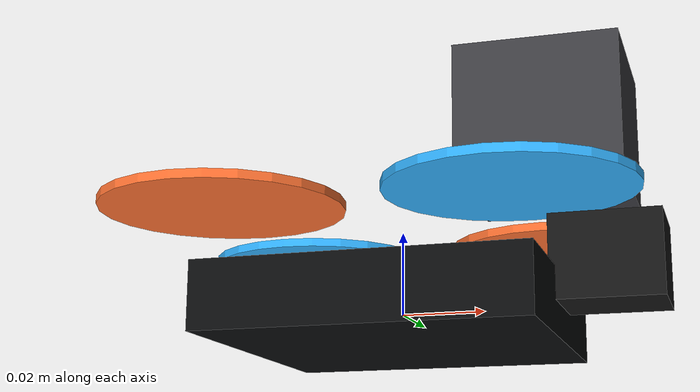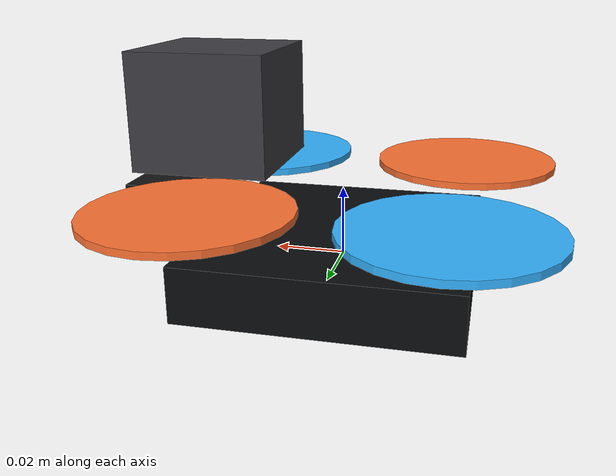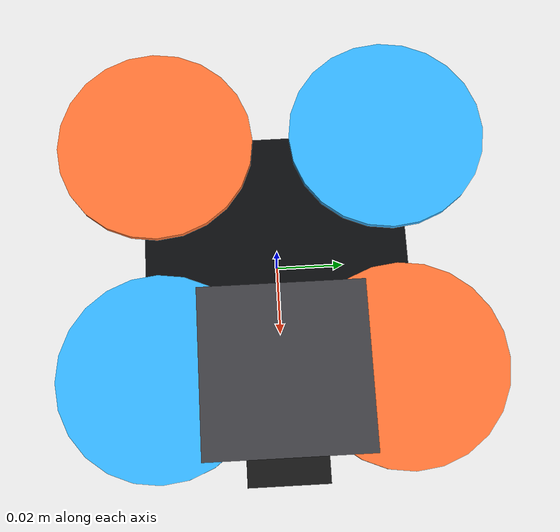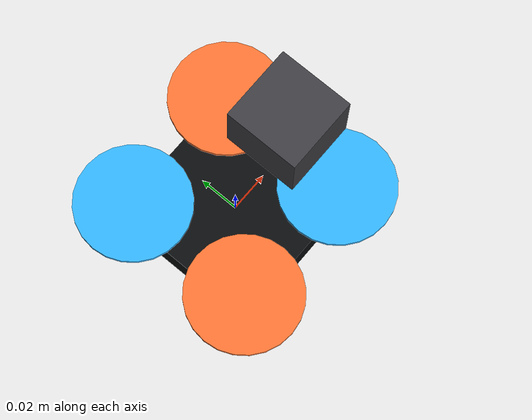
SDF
<?xml version="1.0"?>
<sdf version="1.10">
  <model name="openipc_cinewhoop">
    <!-- World placement belongs to the including world, not the model. -->
    <pose>0 0 0 0 0 0</pose>
    <static>false</static>

    <!-- Publish rotor motion so motor mapping can be verified headlessly. -->
    <plugin filename="gz-sim-joint-state-publisher-system"
            name="gz::sim::systems::JointStatePublisher"/>

    <link name="base_link">
      <inertial>
        <mass>0.15022</mass>
        <inertia>
          <ixx>0.000101</ixx>
          <iyy>0.000101</iyy>
          <izz>0.000171</izz>
          <ixy>0</ixy>
          <ixz>0</ixz>
          <iyz>0</iyz>
        </inertia>
      </inertial>
      <collision name="body_collision">
        <geometry><box><size>0.077 0.077 0.016</size></box></geometry>
      </collision>
      <visual name="body_visual">
        <geometry><box><size>0.077 0.077 0.016</size></box></geometry>
        <material><diffuse>0.04 0.045 0.05 1</diffuse></material>
      </visual>
    </link>

    <link name="front_lidar_link">
      <pose relative_to="base_link">0.0364 0 0.0432 0 0 0</pose>
      <inertial><mass>0.042</mass><inertia><ixx>0.0000078</ixx><iyy>0.0000078</iyy><izz>0.0000078</izz></inertia></inertial>
      <visual name="visual">
        <geometry><box><size>0.0386 0.0386 0.0333</size></box></geometry>
        <material><diffuse>0.24 0.24 0.26 1</diffuse></material>
      </visual>
      <sensor name="front_lidar" type="gpu_lidar">
        <gz_frame_id>front_lidar_link</gz_frame_id>
        <always_on>true</always_on>
        <update_rate>10</update_rate>
        <ray>
          <scan>
            <horizontal>
              <samples>360</samples>
              <resolution>1</resolution>
              <min_angle>-3.141593</min_angle>
              <max_angle>3.141593</max_angle>
            </horizontal>
            <vertical>
              <samples>1</samples>
              <resolution>1</resolution>
              <min_angle>0</min_angle>
              <max_angle>0</max_angle>
            </vertical>
          </scan>
          <range>
            <min>0.02</min>
            <max>12.0</max>
            <resolution>0.01</resolution>
          </range>
        </ray>
      </sensor>
    </link>
    <joint name="front_lidar_joint" type="fixed">
      <parent>base_link</parent>
      <child>front_lidar_link</child>
    </joint>

    <link name="rangefinder_link">
      <pose relative_to="base_link">0.015 0 -0.014 0 1.57079632679 0</pose>
      <inertial><mass>0.002</mass><inertia><ixx>0.0000001</ixx><iyy>0.0000001</iyy><izz>0.0000001</izz></inertia></inertial>
      <sensor name="down_range" type="gpu_lidar">
        <gz_frame_id>rangefinder_link</gz_frame_id>
        <always_on>true</always_on>
        <update_rate>20</update_rate>
        <ray>
          <scan>
            <horizontal>
              <samples>5</samples>
              <resolution>1</resolution>
              <min_angle>-0.0175</min_angle>
              <max_angle>0.0175</max_angle>
            </horizontal>
          </scan>
          <range>
            <min>0.05</min>
            <max>5.0</max>
            <resolution>0.01</resolution>
          </range>
        </ray>
      </sensor>
    </link>
    <joint name="rangefinder_joint" type="fixed">
      <parent>base_link</parent>
      <child>rangefinder_link</child>
    </joint>

    <link name="imu_link">
      <pose relative_to="base_link">0 0 0.016 0 0 0</pose>
      <inertial><mass>0.002</mass><inertia><ixx>0.0000001</ixx><iyy>0.0000001</iyy><izz>0.0000001</izz></inertia></inertial>
      <sensor name="imu" type="imu">
        <gz_frame_id>imu_link</gz_frame_id>
        <pose degrees="true">0 0 0 180 0 0</pose>
        <always_on>true</always_on>
        <!-- Iris runs its IMU at 1000 Hz; raising ours is worth doing once the
             rotor velocity loop is stable enough to benefit from it. -->
        <update_rate>100</update_rate>
      </sensor>
      <sensor name="imu_ros" type="imu">
        <gz_frame_id>imu_link</gz_frame_id>
        <always_on>true</always_on>
        <update_rate>100</update_rate>
      </sensor>
    </link>
    <joint name="imu_joint" type="fixed">
      <parent>base_link</parent>
      <child>imu_link</child>
    </joint>

    <link name="camera_link">
      <pose relative_to="base_link">0.050 0 0.010 0 0 0</pose>
      <inertial><mass>0.006</mass><inertia><ixx>0.0000005</ixx><iyy>0.0000005</iyy><izz>0.0000005</izz></inertia></inertial>
      <visual name="visual">
        <geometry><box><size>0.026 0.022 0.020</size></box></geometry>
        <material><diffuse>0.08 0.08 0.08 1</diffuse></material>
      </visual>
      <sensor name="front_camera" type="camera">
        <gz_frame_id>camera_optical_frame</gz_frame_id>
        <pose>0.014 0 0 0 0 0</pose>
        <always_on>true</always_on>
        <update_rate>15</update_rate>
        <camera>
          <horizontal_fov>1.3962634</horizontal_fov>
          <image>
            <width>640</width>
            <height>480</height>
            <format>R8G8B8</format>
          </image>
          <clip>
            <near>0.05</near>
            <far>20</far>
          </clip>
        </camera>
      </sensor>
    </link>
    <joint name="camera_joint" type="fixed">
      <parent>base_link</parent>
      <child>camera_link</child>
    </joint>

    <link name="motor_1"><pose relative_to="base_link">0.03313 -0.03313 0.010 0 0 0</pose><inertial><mass>0.0062</mass><inertia><ixx>0.0000002</ixx><iyy>0.0000002</iyy><izz>0.0000002</izz></inertia></inertial></link>
    <joint name="motor_1_joint" type="fixed"><parent>base_link</parent><child>motor_1</child></joint>
    <link name="motor_2"><pose relative_to="base_link">-0.03313 0.03313 0.010 0 0 0</pose><inertial><mass>0.0062</mass><inertia><ixx>0.0000002</ixx><iyy>0.0000002</iyy><izz>0.0000002</izz></inertia></inertial></link>
    <joint name="motor_2_joint" type="fixed"><parent>base_link</parent><child>motor_2</child></joint>
    <link name="motor_3"><pose relative_to="base_link">0.03313 0.03313 0.010 0 0 0</pose><inertial><mass>0.0062</mass><inertia><ixx>0.0000002</ixx><iyy>0.0000002</iyy><izz>0.0000002</izz></inertia></inertial></link>
    <joint name="motor_3_joint" type="fixed"><parent>base_link</parent><child>motor_3</child></joint>
    <link name="motor_4"><pose relative_to="base_link">-0.03313 -0.03313 0.010 0 0 0</pose><inertial><mass>0.0062</mass><inertia><ixx>0.0000002</ixx><iyy>0.0000002</iyy><izz>0.0000002</izz></inertia></inertial></link>
    <joint name="motor_4_joint" type="fixed"><parent>base_link</parent><child>motor_4</child></joint>

    <!-- 2.2 inch propellers, ordered like ArduPilot's Quad X reference model. -->
    <link name="rotor_0"><pose relative_to="base_link">0.03313 -0.03313 0.021 0 0 0</pose><inertial><mass>0.00058</mass><inertia><ixx>0.0000004</ixx><iyy>0.0000004</iyy><izz>0.0000008</izz></inertia></inertial><visual name="prop"><geometry><cylinder><radius>0.02794</radius><length>0.002</length></cylinder></geometry><material><diffuse>0.2 0.7 1 1</diffuse></material></visual></link>
    <joint name="rotor_0_joint" type="revolute"><parent>base_link</parent><child>rotor_0</child><axis><xyz>0 0 1</xyz><limit><lower>-1e16</lower><upper>1e16</upper></limit><dynamics><damping>0.0002</damping></dynamics></axis></joint>
    <link name="rotor_1"><pose relative_to="base_link">-0.03313 0.03313 0.021 0 0 0</pose><inertial><mass>0.00058</mass><inertia><ixx>0.0000004</ixx><iyy>0.0000004</iyy><izz>0.0000008</izz></inertia></inertial><visual name="prop"><geometry><cylinder><radius>0.02794</radius><length>0.002</length></cylinder></geometry><material><diffuse>0.2 0.7 1 1</diffuse></material></visual></link>
    <joint name="rotor_1_joint" type="revolute"><parent>base_link</parent><child>rotor_1</child><axis><xyz>0 0 1</xyz><limit><lower>-1e16</lower><upper>1e16</upper></limit><dynamics><damping>0.0002</damping></dynamics></axis></joint>
    <link name="rotor_2"><pose relative_to="base_link">0.03313 0.03313 0.021 0 0 0</pose><inertial><mass>0.00058</mass><inertia><ixx>0.0000004</ixx><iyy>0.0000004</iyy><izz>0.0000008</izz></inertia></inertial><visual name="prop"><geometry><cylinder><radius>0.02794</radius><length>0.002</length></cylinder></geometry><material><diffuse>1 0.45 0.2 1</diffuse></material></visual></link>
    <joint name="rotor_2_joint" type="revolute"><parent>base_link</parent><child>rotor_2</child><axis><xyz>0 0 1</xyz><limit><lower>-1e16</lower><upper>1e16</upper></limit><dynamics><damping>0.0002</damping></dynamics></axis></joint>
    <link name="rotor_3"><pose relative_to="base_link">-0.03313 -0.03313 0.021 0 0 0</pose><inertial><mass>0.00058</mass><inertia><ixx>0.0000004</ixx><iyy>0.0000004</iyy><izz>0.0000008</izz></inertia></inertial><visual name="prop"><geometry><cylinder><radius>0.02794</radius><length>0.002</length></cylinder></geometry><material><diffuse>1 0.45 0.2 1</diffuse></material></visual></link>
    <joint name="rotor_3_joint" type="revolute"><parent>base_link</parent><child>rotor_3</child><axis><xyz>0 0 1</xyz><limit><lower>-1e16</lower><upper>1e16</upper></limit><dynamics><damping>0.0002</damping></dynamics></axis></joint>

    <!-- Two blade surfaces per propeller. The paired forward directions give
         a rotating propeller lift without adding collisions to the ducts. -->

    <!--
      The ArduPilot Gazebo plugin exchanges IMU and pose state as JSON with
      SITL and drives the four aerodynamic propeller joints below.
    -->
    <plugin filename="gz-sim-multicopter-motor-model-system"
            name="gz::sim::systems::MulticopterMotorModel">
      <robotNamespace>openipc_cinewhoop</robotNamespace>
      <commandSubTopic>command/motor_speed</commandSubTopic>
      <jointName>rotor_0_joint</jointName>
      <linkName>rotor_0</linkName>
      <actuator_number>0</actuator_number>
      <turningDirection>ccw</turningDirection>
      <motorType>velocity</motorType>
      <maxRotVelocity>5580</maxRotVelocity>
      <motorConstant>6.36e-08</motorConstant>
      <momentConstant>0.0095</momentConstant>
      <timeConstantUp>0.0125</timeConstantUp>
      <timeConstantDown>0.025</timeConstantDown>
      <rotorDragCoefficient>1.0e-05</rotorDragCoefficient>
      <rollingMomentCoefficient>1.0e-07</rollingMomentCoefficient>
      <rotorVelocitySlowdownSim>10</rotorVelocitySlowdownSim>
    </plugin>
    <plugin filename="gz-sim-multicopter-motor-model-system"
            name="gz::sim::systems::MulticopterMotorModel">
      <robotNamespace>openipc_cinewhoop</robotNamespace>
      <commandSubTopic>command/motor_speed</commandSubTopic>
      <jointName>rotor_1_joint</jointName>
      <linkName>rotor_1</linkName>
      <actuator_number>1</actuator_number>
      <turningDirection>ccw</turningDirection>
      <motorType>velocity</motorType>
      <maxRotVelocity>5580</maxRotVelocity>
      <motorConstant>6.36e-08</motorConstant>
      <momentConstant>0.0095</momentConstant>
      <timeConstantUp>0.0125</timeConstantUp>
      <timeConstantDown>0.025</timeConstantDown>
      <rotorDragCoefficient>1.0e-05</rotorDragCoefficient>
      <rollingMomentCoefficient>1.0e-07</rollingMomentCoefficient>
      <rotorVelocitySlowdownSim>10</rotorVelocitySlowdownSim>
    </plugin>
    <plugin filename="gz-sim-multicopter-motor-model-system"
            name="gz::sim::systems::MulticopterMotorModel">
      <robotNamespace>openipc_cinewhoop</robotNamespace>
      <commandSubTopic>command/motor_speed</commandSubTopic>
      <jointName>rotor_2_joint</jointName>
      <linkName>rotor_2</linkName>
      <actuator_number>2</actuator_number>
      <turningDirection>cw</turningDirection>
      <motorType>velocity</motorType>
      <maxRotVelocity>5580</maxRotVelocity>
      <motorConstant>6.36e-08</motorConstant>
      <momentConstant>0.0095</momentConstant>
      <timeConstantUp>0.0125</timeConstantUp>
      <timeConstantDown>0.025</timeConstantDown>
      <rotorDragCoefficient>1.0e-05</rotorDragCoefficient>
      <rollingMomentCoefficient>1.0e-07</rollingMomentCoefficient>
      <rotorVelocitySlowdownSim>10</rotorVelocitySlowdownSim>
    </plugin>
    <plugin filename="gz-sim-multicopter-motor-model-system"
            name="gz::sim::systems::MulticopterMotorModel">
      <robotNamespace>openipc_cinewhoop</robotNamespace>
      <commandSubTopic>command/motor_speed</commandSubTopic>
      <jointName>rotor_3_joint</jointName>
      <linkName>rotor_3</linkName>
      <actuator_number>3</actuator_number>
      <turningDirection>cw</turningDirection>
      <motorType>velocity</motorType>
      <maxRotVelocity>5580</maxRotVelocity>
      <motorConstant>6.36e-08</motorConstant>
      <momentConstant>0.0095</momentConstant>
      <timeConstantUp>0.0125</timeConstantUp>
      <timeConstantDown>0.025</timeConstantDown>
      <rotorDragCoefficient>1.0e-05</rotorDragCoefficient>
      <rollingMomentCoefficient>1.0e-07</rollingMomentCoefficient>
      <rotorVelocitySlowdownSim>10</rotorVelocitySlowdownSim>
    </plugin>

    <plugin name="ArduPilotPlugin" filename="ArduPilotPlugin">
      <fdm_addr>127.0.0.1</fdm_addr>
      <fdm_port_in>9002</fdm_port_in>
      <connectionTimeoutMaxCount>5</connectionTimeoutMaxCount>
      <lock_step>1</lock_step>
      <no_time_sync>1</no_time_sync>

      <!-- Convert Gazebo ENU / FLU into ArduPilot NED / FRD. -->
      <modelXYZToAirplaneXForwardZDown degrees="true">0 0 0 180 0 0</modelXYZToAirplaneXForwardZDown>
      <gazeboXYZToNED degrees="true">0 0 0 180 0 90</gazeboXYZToNED>

      <imuName>imu_link::imu</imuName>

      <!-- Quad X mapping follows the Iris reference model, scaled for 3 in props. -->
      <control channel="0"><jointName>rotor_0_joint</jointName><multiplier>5580</multiplier><offset>0</offset><servo_min>1100</servo_min><servo_max>1900</servo_max><type>COMMAND</type><cmd_topic>/model/openipc_cinewhoop/joint/rotor_0_joint/cmd</cmd_topic></control>
      <control channel="1"><jointName>rotor_1_joint</jointName><multiplier>5580</multiplier><offset>0</offset><servo_min>1100</servo_min><servo_max>1900</servo_max><type>COMMAND</type><cmd_topic>/model/openipc_cinewhoop/joint/rotor_1_joint/cmd</cmd_topic></control>
      <control channel="2"><jointName>rotor_2_joint</jointName><multiplier>5580</multiplier><offset>0</offset><servo_min>1100</servo_min><servo_max>1900</servo_max><type>COMMAND</type><cmd_topic>/model/openipc_cinewhoop/joint/rotor_2_joint/cmd</cmd_topic></control>
      <control channel="3"><jointName>rotor_3_joint</jointName><multiplier>5580</multiplier><offset>0</offset><servo_min>1100</servo_min><servo_max>1900</servo_max><type>COMMAND</type><cmd_topic>/model/openipc_cinewhoop/joint/rotor_3_joint/cmd</cmd_topic></control>
    </plugin>
  </model>
</sdf>
